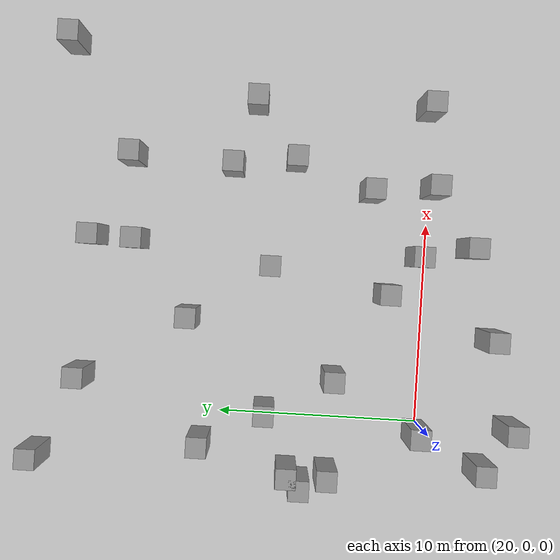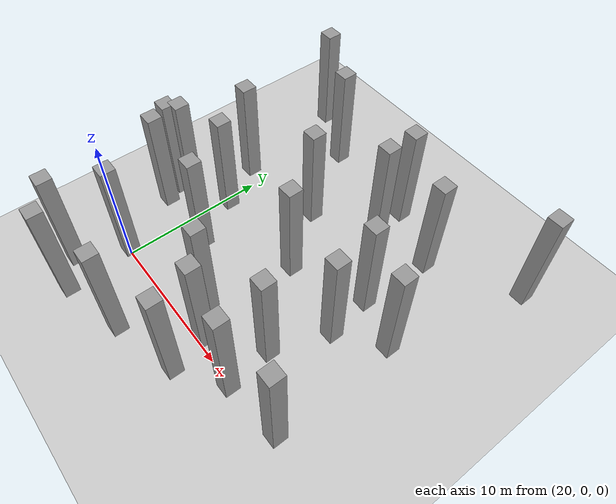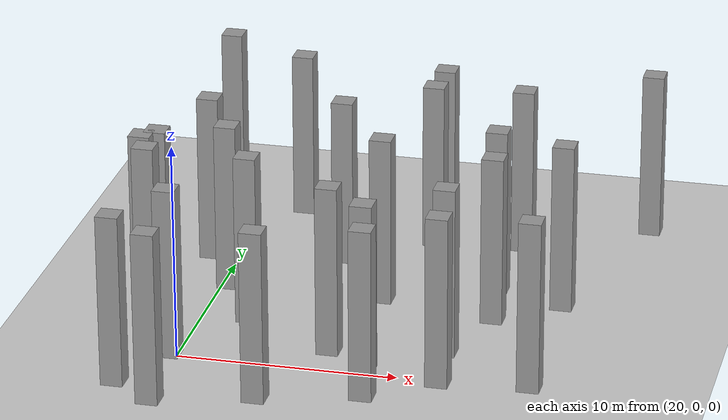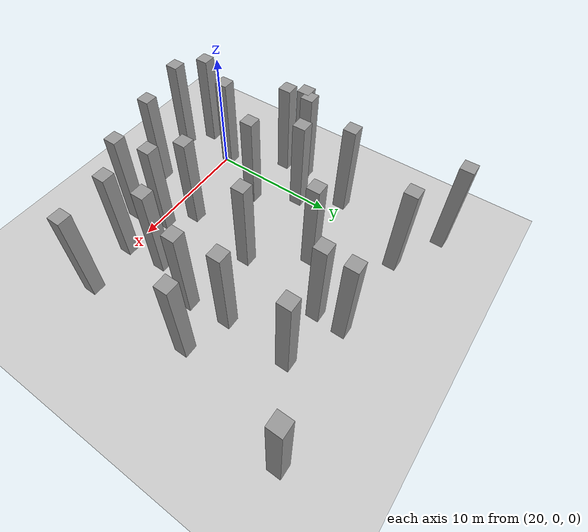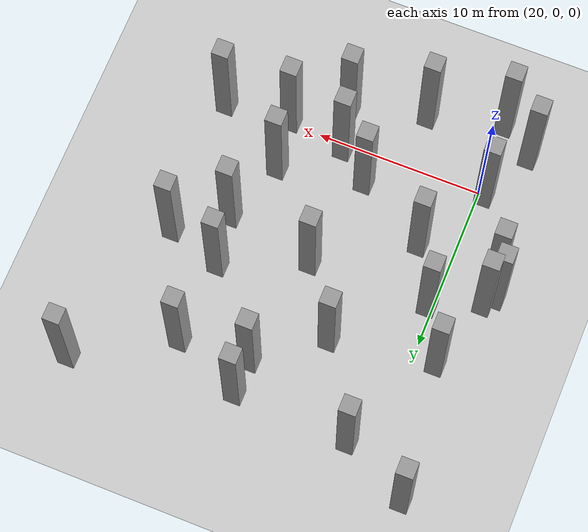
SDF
<sdf version="1.7">
 <world name="default">
  <model name="ground_plane">
   <static>1</static>
   <link name="link">
    <collision name="collision">
     <geometry><plane><normal>0 0 1</normal><size>100 100</size></plane></geometry>
     <surface>
      <contact><collide_bitmask>65535</collide_bitmask></contact>
      <friction><ode><mu>100</mu><mu2>50</mu2></ode></friction>
     </surface>
    </collision>
    <visual name="visual">
     <cast_shadows>0</cast_shadows>
     <geometry><plane><normal>0 0 1</normal><size>100 100</size></plane></geometry>
     <material>
      <script><uri>file://media/materials/scripts/gazebo.material</uri><name>Gazebo/Grey</name></script>
     </material>
    </visual>
   </link>
  </model>
  <model name="unit_box_static1">
   <link name="link">
    <inertial>
     <mass>1</mass>
     <inertia>
      <ixx>0.166667</ixx>
      <ixy>0</ixy>
      <ixz>0</ixz>
      <iyy>0.166667</iyy>
      <iyz>0</iyz>
      <izz>0.166667</izz>
     </inertia>
    </inertial>
    <visual name="visual">
     <geometry><box><size>1 1 8</size></box></geometry>
     <material>
      <script><name>Gazebo/Grey</name><uri>file://media/materials/scripts/gazebo.material</uri></script>
      <shader type="pixel"/>
     </material>
    </visual>
    <collision name="collision">
     <geometry><box><size>1 1 8</size></box></geometry>
     <surface>
      <friction>
       <ode><mu>1</mu><mu2>1</mu2><fdir1>0 0 0</fdir1><slip1>0</slip1><slip2>0</slip2></ode>
       <torsional>
        <coefficient>1</coefficient>
        <patch_radius>0</patch_radius>
        <surface_radius>0</surface_radius>
        <use_patch_radius>1</use_patch_radius>
        <ode><slip>0</slip></ode>
       </torsional>
      </friction>
      <bounce><restitution_coefficient>0</restitution_coefficient><threshold>1e+06</threshold></bounce>
      <contact>
       <collide_without_contact>0</collide_without_contact>
       <collide_without_contact_bitmask>1</collide_without_contact_bitmask>
       <collide_bitmask>1</collide_bitmask>
       <ode>
        <soft_cfm>0</soft_cfm>
        <soft_erp>0.2</soft_erp>
        <kp>1e+13</kp>
        <kd>1</kd>
        <max_vel>0.01</max_vel>
        <min_depth>0</min_depth>
       </ode>
       <bullet>
        <split_impulse>1</split_impulse>
        <split_impulse_penetration_threshold>-0.01</split_impulse_penetration_threshold>
        <soft_cfm>0</soft_cfm>
        <soft_erp>0.2</soft_erp>
        <kp>1e+13</kp>
        <kd>1</kd>
       </bullet>
      </contact>
     </surface>
    </collision>
   </link>
   <static>1</static>
   <pose>26.4613 1.99976 4 0 -0 0</pose>
  </model>
  <model name="unit_box_static5">
   <link name="link">
    <inertial>
     <mass>1</mass>
     <inertia>
      <ixx>0.166667</ixx>
      <ixy>0</ixy>
      <ixz>0</ixz>
      <iyy>0.166667</iyy>
      <iyz>0</iyz>
      <izz>0.166667</izz>
     </inertia>
    </inertial>
    <visual name="visual">
     <geometry><box><size>1 1 8</size></box></geometry>
     <material>
      <script><name>Gazebo/Grey</name><uri>file://media/materials/scripts/gazebo.material</uri></script>
      <shader type="pixel"/>
     </material>
    </visual>
    <collision name="collision">
     <geometry><box><size>1 1 8</size></box></geometry>
     <surface>
      <friction>
       <ode><mu>1</mu><mu2>1</mu2><fdir1>0 0 0</fdir1><slip1>0</slip1><slip2>0</slip2></ode>
       <torsional>
        <coefficient>1</coefficient>
        <patch_radius>0</patch_radius>
        <surface_radius>0</surface_radius>
        <use_patch_radius>1</use_patch_radius>
        <ode><slip>0</slip></ode>
       </torsional>
      </friction>
      <bounce><restitution_coefficient>0</restitution_coefficient><threshold>1e+06</threshold></bounce>
      <contact>
       <collide_without_contact>0</collide_without_contact>
       <collide_without_contact_bitmask>1</collide_without_contact_bitmask>
       <collide_bitmask>1</collide_bitmask>
       <ode>
        <soft_cfm>0</soft_cfm>
        <soft_erp>0.2</soft_erp>
        <kp>1e+13</kp>
        <kd>1</kd>
        <max_vel>0.01</max_vel>
        <min_depth>0</min_depth>
       </ode>
       <bullet>
        <split_impulse>1</split_impulse>
        <split_impulse_penetration_threshold>-0.01</split_impulse_penetration_threshold>
        <soft_cfm>0</soft_cfm>
        <soft_erp>0.2</soft_erp>
        <kp>1e+13</kp>
        <kd>1</kd>
       </bullet>
      </contact>
     </surface>
    </collision>
   </link>
   <static>1</static>
   <pose>35.6939 8.8659 4 0 -0 0</pose>
  </model>
  <model name="unit_box_static16">
   <link name="link">
    <inertial>
     <mass>1</mass>
     <inertia>
      <ixx>0.166667</ixx>
      <ixy>0</ixy>
      <ixz>0</ixz>
      <iyy>0.166667</iyy>
      <iyz>0</iyz>
      <izz>0.166667</izz>
     </inertia>
    </inertial>
    <visual name="visual">
     <geometry><box><size>1 1 8</size></box></geometry>
     <material>
      <script><name>Gazebo/Grey</name><uri>file://media/materials/scripts/gazebo.material</uri></script>
      <shader type="pixel"/>
     </material>
    </visual>
    <collision name="collision">
     <geometry><box><size>1 1 8</size></box></geometry>
     <surface>
      <friction>
       <ode><mu>1</mu><mu2>1</mu2><fdir1>0 0 0</fdir1><slip1>0</slip1><slip2>0</slip2></ode>
       <torsional>
        <coefficient>1</coefficient>
        <patch_radius>0</patch_radius>
        <surface_radius>0</surface_radius>
        <use_patch_radius>1</use_patch_radius>
        <ode><slip>0</slip></ode>
       </torsional>
      </friction>
      <bounce><restitution_coefficient>0</restitution_coefficient><threshold>1e+06</threshold></bounce>
      <contact>
       <collide_without_contact>0</collide_without_contact>
       <collide_without_contact_bitmask>1</collide_without_contact_bitmask>
       <collide_bitmask>1</collide_bitmask>
       <ode>
        <soft_cfm>0</soft_cfm>
        <soft_erp>0.2</soft_erp>
        <kp>1e+13</kp>
        <kd>1</kd>
        <max_vel>0.01</max_vel>
        <min_depth>0</min_depth>
       </ode>
       <bullet>
        <split_impulse>1</split_impulse>
        <split_impulse_penetration_threshold>-0.01</split_impulse_penetration_threshold>
        <soft_cfm>0</soft_cfm>
        <soft_erp>0.2</soft_erp>
        <kp>1e+13</kp>
        <kd>1</kd>
       </bullet>
      </contact>
     </surface>
    </collision>
   </link>
   <static>1</static>
   <pose>28.5174 14.5756 4 0 -0 0</pose>
  </model>
  <model name="unit_box_static18">
   <link name="link">
    <inertial>
     <mass>1</mass>
     <inertia>
      <ixx>0.166667</ixx>
      <ixy>0</ixy>
      <ixz>0</ixz>
      <iyy>0.166667</iyy>
      <iyz>0</iyz>
      <izz>0.166667</izz>
     </inertia>
    </inertial>
    <visual name="visual">
     <geometry><box><size>1 1 8</size></box></geometry>
     <material>
      <script><name>Gazebo/Grey</name><uri>file://media/materials/scripts/gazebo.material</uri></script>
      <shader type="pixel"/>
     </material>
    </visual>
    <collision name="collision">
     <geometry><box><size>1 1 8</size></box></geometry>
     <surface>
      <friction>
       <ode><mu>1</mu><mu2>1</mu2><fdir1>0 0 0</fdir1><slip1>0</slip1><slip2>0</slip2></ode>
       <torsional>
        <coefficient>1</coefficient>
        <patch_radius>0</patch_radius>
        <surface_radius>0</surface_radius>
        <use_patch_radius>1</use_patch_radius>
        <ode><slip>0</slip></ode>
       </torsional>
      </friction>
      <bounce><restitution_coefficient>0</restitution_coefficient><threshold>1e+06</threshold></bounce>
      <contact>
       <collide_without_contact>0</collide_without_contact>
       <collide_without_contact_bitmask>1</collide_without_contact_bitmask>
       <collide_bitmask>1</collide_bitmask>
       <ode>
        <soft_cfm>0</soft_cfm>
        <soft_erp>0.2</soft_erp>
        <kp>1e+13</kp>
        <kd>1</kd>
        <max_vel>0.01</max_vel>
        <min_depth>0</min_depth>
       </ode>
       <bullet>
        <split_impulse>1</split_impulse>
        <split_impulse_penetration_threshold>-0.01</split_impulse_penetration_threshold>
        <soft_cfm>0</soft_cfm>
        <soft_erp>0.2</soft_erp>
        <kp>1e+13</kp>
        <kd>1</kd>
       </bullet>
      </contact>
     </surface>
    </collision>
   </link>
   <static>1</static>
   <pose>17.3853 6.51592 4 0 -0 0</pose>
  </model>
  <model name="unit_box_static22">
   <link name="link">
    <inertial>
     <mass>1</mass>
     <inertia>
      <ixx>0.166667</ixx>
      <ixy>0</ixy>
      <ixz>0</ixz>
      <iyy>0.166667</iyy>
      <iyz>0</iyz>
      <izz>0.166667</izz>
     </inertia>
    </inertial>
    <visual name="visual">
     <geometry><box><size>1 1 8</size></box></geometry>
     <material>
      <script><name>Gazebo/Grey</name><uri>file://media/materials/scripts/gazebo.material</uri></script>
      <shader type="pixel"/>
     </material>
    </visual>
    <collision name="collision">
     <geometry><box><size>1 1 8</size></box></geometry>
     <surface>
      <friction>
       <ode><mu>1</mu><mu2>1</mu2><fdir1>0 0 0</fdir1><slip1>0</slip1><slip2>0</slip2></ode>
       <torsional>
        <coefficient>1</coefficient>
        <patch_radius>0</patch_radius>
        <surface_radius>0</surface_radius>
        <use_patch_radius>1</use_patch_radius>
        <ode><slip>0</slip></ode>
       </torsional>
      </friction>
      <bounce><restitution_coefficient>0</restitution_coefficient><threshold>1e+06</threshold></bounce>
      <contact>
       <collide_without_contact>0</collide_without_contact>
       <collide_without_contact_bitmask>1</collide_without_contact_bitmask>
       <collide_bitmask>1</collide_bitmask>
       <ode>
        <soft_cfm>0</soft_cfm>
        <soft_erp>0.2</soft_erp>
        <kp>1e+13</kp>
        <kd>1</kd>
        <max_vel>0.01</max_vel>
        <min_depth>0</min_depth>
       </ode>
       <bullet>
        <split_impulse>1</split_impulse>
        <split_impulse_penetration_threshold>-0.01</split_impulse_penetration_threshold>
        <soft_cfm>0</soft_cfm>
        <soft_erp>0.2</soft_erp>
        <kp>1e+13</kp>
        <kd>1</kd>
       </bullet>
      </contact>
     </surface>
    </collision>
   </link>
   <static>1</static>
   <pose>17.6137 19.0399 4 0 -0 0</pose>
  </model>
  <model name="unit_box_static30">
   <link name="link">
    <inertial>
     <mass>1</mass>
     <inertia>
      <ixx>0.166667</ixx>
      <ixy>0</ixy>
      <ixz>0</ixz>
      <iyy>0.166667</iyy>
      <iyz>0</iyz>
      <izz>0.166667</izz>
     </inertia>
    </inertial>
    <visual name="visual">
     <geometry><box><size>1 1 8</size></box></geometry>
     <material>
      <script><name>Gazebo/Grey</name><uri>file://media/materials/scripts/gazebo.material</uri></script>
      <shader type="pixel"/>
     </material>
    </visual>
    <collision name="collision">
     <geometry><box><size>1 1 8</size></box></geometry>
     <surface>
      <friction>
       <ode><mu>1</mu><mu2>1</mu2><fdir1>0 0 0</fdir1><slip1>0</slip1><slip2>0</slip2></ode>
       <torsional>
        <coefficient>1</coefficient>
        <patch_radius>0</patch_radius>
        <surface_radius>0</surface_radius>
        <use_patch_radius>1</use_patch_radius>
        <ode><slip>0</slip></ode>
       </torsional>
      </friction>
      <bounce><restitution_coefficient>0</restitution_coefficient><threshold>1e+06</threshold></bounce>
      <contact>
       <collide_without_contact>0</collide_without_contact>
       <collide_without_contact_bitmask>1</collide_without_contact_bitmask>
       <collide_bitmask>1</collide_bitmask>
       <ode>
        <soft_cfm>0</soft_cfm>
        <soft_erp>0.2</soft_erp>
        <kp>1e+13</kp>
        <kd>1</kd>
        <max_vel>0.01</max_vel>
        <min_depth>0</min_depth>
       </ode>
       <bullet>
        <split_impulse>1</split_impulse>
        <split_impulse_penetration_threshold>-0.01</split_impulse_penetration_threshold>
        <soft_cfm>0</soft_cfm>
        <soft_erp>0.2</soft_erp>
        <kp>1e+13</kp>
        <kd>1</kd>
       </bullet>
      </contact>
     </surface>
    </collision>
   </link>
   <static>1</static>
   <pose>18.6423 10.8891 4 0 -0 0</pose>
  </model>
  <model name="unit_box_static31">
   <link name="link">
    <inertial>
     <mass>1</mass>
     <inertia>
      <ixx>0.166667</ixx>
      <ixy>0</ixy>
      <ixz>0</ixz>
      <iyy>0.166667</iyy>
      <iyz>0</iyz>
      <izz>0.166667</izz>
     </inertia>
    </inertial>
    <visual name="visual">
     <geometry><box><size>1 1 8</size></box></geometry>
     <material>
      <script><name>Gazebo/Grey</name><uri>file://media/materials/scripts/gazebo.material</uri></script>
      <shader type="pixel"/>
     </material>
    </visual>
    <collision name="collision">
     <geometry><box><size>1 1 8</size></box></geometry>
     <surface>
      <friction>
       <ode><mu>1</mu><mu2>1</mu2><fdir1>0 0 0</fdir1><slip1>0</slip1><slip2>0</slip2></ode>
       <torsional>
        <coefficient>1</coefficient>
        <patch_radius>0</patch_radius>
        <surface_radius>0</surface_radius>
        <use_patch_radius>1</use_patch_radius>
        <ode><slip>0</slip></ode>
       </torsional>
      </friction>
      <bounce><restitution_coefficient>0</restitution_coefficient><threshold>1e+06</threshold></bounce>
      <contact>
       <collide_without_contact>0</collide_without_contact>
       <collide_without_contact_bitmask>1</collide_without_contact_bitmask>
       <collide_bitmask>1</collide_bitmask>
       <ode>
        <soft_cfm>0</soft_cfm>
        <soft_erp>0.2</soft_erp>
        <kp>1e+13</kp>
        <kd>1</kd>
        <max_vel>0.01</max_vel>
        <min_depth>0</min_depth>
       </ode>
       <bullet>
        <split_impulse>1</split_impulse>
        <split_impulse_penetration_threshold>-0.01</split_impulse_penetration_threshold>
        <soft_cfm>0</soft_cfm>
        <soft_erp>0.2</soft_erp>
        <kp>1e+13</kp>
        <kd>1</kd>
       </bullet>
      </contact>
     </surface>
    </collision>
   </link>
   <static>1</static>
   <pose>28.379 0.483916 4 0 -0 0</pose>
  </model>
  <model name="unit_box_static32">
   <link name="link">
    <inertial>
     <mass>1</mass>
     <inertia>
      <ixx>0.166667</ixx>
      <ixy>0</ixy>
      <ixz>0</ixz>
      <iyy>0.166667</iyy>
      <iyz>0</iyz>
      <izz>0.166667</izz>
     </inertia>
    </inertial>
    <visual name="visual">
     <geometry><box><size>1 1 8</size></box></geometry>
     <material>
      <script><name>Gazebo/Grey</name><uri>file://media/materials/scripts/gazebo.material</uri></script>
      <shader type="pixel"/>
     </material>
    </visual>
    <collision name="collision">
     <geometry><box><size>1 1 8</size></box></geometry>
     <surface>
      <friction>
       <ode><mu>1</mu><mu2>1</mu2><fdir1>0 0 0</fdir1><slip1>0</slip1><slip2>0</slip2></ode>
       <torsional>
        <coefficient>1</coefficient>
        <patch_radius>0</patch_radius>
        <surface_radius>0</surface_radius>
        <use_patch_radius>1</use_patch_radius>
        <ode><slip>0</slip></ode>
       </torsional>
      </friction>
      <bounce><restitution_coefficient>0</restitution_coefficient><threshold>1e+06</threshold></bounce>
      <contact>
       <collide_without_contact>0</collide_without_contact>
       <collide_without_contact_bitmask>1</collide_without_contact_bitmask>
       <collide_bitmask>1</collide_bitmask>
       <ode>
        <soft_cfm>0</soft_cfm>
        <soft_erp>0.2</soft_erp>
        <kp>1e+13</kp>
        <kd>1</kd>
        <max_vel>0.01</max_vel>
        <min_depth>0</min_depth>
       </ode>
       <bullet>
        <split_impulse>1</split_impulse>
        <split_impulse_penetration_threshold>-0.01</split_impulse_penetration_threshold>
        <soft_cfm>0</soft_cfm>
        <soft_erp>0.2</soft_erp>
        <kp>1e+13</kp>
        <kd>1</kd>
       </bullet>
      </contact>
     </surface>
    </collision>
   </link>
   <static>1</static>
   <pose>32.6948 14.9108 4 0 -0 0</pose>
  </model>
  <model name="unit_box_static45">
   <link name="link">
    <inertial>
     <mass>1</mass>
     <inertia>
      <ixx>0.166667</ixx>
      <ixy>0</ixy>
      <ixz>0</ixz>
      <iyy>0.166667</iyy>
      <iyz>0</iyz>
      <izz>0.166667</izz>
     </inertia>
    </inertial>
    <visual name="visual">
     <geometry><box><size>1 1 8</size></box></geometry>
     <material>
      <script><name>Gazebo/Grey</name><uri>file://media/materials/scripts/gazebo.material</uri></script>
      <shader type="pixel"/>
     </material>
    </visual>
    <collision name="collision">
     <geometry><box><size>1 1 8</size></box></geometry>
     <surface>
      <friction>
       <ode><mu>1</mu><mu2>1</mu2><fdir1>0 0 0</fdir1><slip1>0</slip1><slip2>0</slip2></ode>
       <torsional>
        <coefficient>1</coefficient>
        <patch_radius>0</patch_radius>
        <surface_radius>0</surface_radius>
        <use_patch_radius>1</use_patch_radius>
        <ode><slip>0</slip></ode>
       </torsional>
      </friction>
      <bounce><restitution_coefficient>0</restitution_coefficient><threshold>1e+06</threshold></bounce>
      <contact>
       <collide_without_contact>0</collide_without_contact>
       <collide_without_contact_bitmask>1</collide_without_contact_bitmask>
       <collide_bitmask>1</collide_bitmask>
       <ode>
        <soft_cfm>0</soft_cfm>
        <soft_erp>0.2</soft_erp>
        <kp>1e+13</kp>
        <kd>1</kd>
        <max_vel>0.01</max_vel>
        <min_depth>0</min_depth>
       </ode>
       <bullet>
        <split_impulse>1</split_impulse>
        <split_impulse_penetration_threshold>-0.01</split_impulse_penetration_threshold>
        <soft_cfm>0</soft_cfm>
        <soft_erp>0.2</soft_erp>
        <kp>1e+13</kp>
        <kd>1</kd>
       </bullet>
      </contact>
     </surface>
    </collision>
   </link>
   <static>1</static>
   <pose>20.0485 -4.47265 4 0 -0 0</pose>
  </model>
  <model name="unit_box_static46">
   <link name="link">
    <inertial>
     <mass>1</mass>
     <inertia>
      <ixx>0.166667</ixx>
      <ixy>0</ixy>
      <ixz>0</ixz>
      <iyy>0.166667</iyy>
      <iyz>0</iyz>
      <izz>0.166667</izz>
     </inertia>
    </inertial>
    <visual name="visual">
     <geometry><box><size>1 1 8</size></box></geometry>
     <material>
      <script><name>Gazebo/Grey</name><uri>file://media/materials/scripts/gazebo.material</uri></script>
      <shader type="pixel"/>
     </material>
    </visual>
    <collision name="collision">
     <geometry><box><size>1 1 8</size></box></geometry>
     <surface>
      <friction>
       <ode><mu>1</mu><mu2>1</mu2><fdir1>0 0 0</fdir1><slip1>0</slip1><slip2>0</slip2></ode>
       <torsional>
        <coefficient>1</coefficient>
        <patch_radius>0</patch_radius>
        <surface_radius>0</surface_radius>
        <use_patch_radius>1</use_patch_radius>
        <ode><slip>0</slip></ode>
       </torsional>
      </friction>
      <bounce><restitution_coefficient>0</restitution_coefficient><threshold>1e+06</threshold></bounce>
      <contact>
       <collide_without_contact>0</collide_without_contact>
       <collide_without_contact_bitmask>1</collide_without_contact_bitmask>
       <collide_bitmask>1</collide_bitmask>
       <ode>
        <soft_cfm>0</soft_cfm>
        <soft_erp>0.2</soft_erp>
        <kp>1e+13</kp>
        <kd>1</kd>
        <max_vel>0.01</max_vel>
        <min_depth>0</min_depth>
       </ode>
       <bullet>
        <split_impulse>1</split_impulse>
        <split_impulse_penetration_threshold>-0.01</split_impulse_penetration_threshold>
        <soft_cfm>0</soft_cfm>
        <soft_erp>0.2</soft_erp>
        <kp>1e+13</kp>
        <kd>1</kd>
       </bullet>
      </contact>
     </surface>
    </collision>
   </link>
   <static>1</static>
   <pose>32.4495 9.89256 4 0 -0 0</pose>
  </model>
  <model name="unit_box_static52">
   <link name="link">
    <inertial>
     <mass>1</mass>
     <inertia>
      <ixx>0.166667</ixx>
      <ixy>0</ixy>
      <ixz>0</ixz>
      <iyy>0.166667</iyy>
      <iyz>0</iyz>
      <izz>0.166667</izz>
     </inertia>
    </inertial>
    <visual name="visual">
     <geometry><box><size>1 1 8</size></box></geometry>
     <material>
      <script><name>Gazebo/Grey</name><uri>file://media/materials/scripts/gazebo.material</uri></script>
      <shader type="pixel"/>
     </material>
    </visual>
    <collision name="collision">
     <geometry><box><size>1 1 8</size></box></geometry>
     <surface>
      <friction>
       <ode><mu>1</mu><mu2>1</mu2><fdir1>0 0 0</fdir1><slip1>0</slip1><slip2>0</slip2></ode>
       <torsional>
        <coefficient>1</coefficient>
        <patch_radius>0</patch_radius>
        <surface_radius>0</surface_radius>
        <use_patch_radius>1</use_patch_radius>
        <ode><slip>0</slip></ode>
       </torsional>
      </friction>
      <bounce><restitution_coefficient>0</restitution_coefficient><threshold>1e+06</threshold></bounce>
      <contact>
       <collide_without_contact>0</collide_without_contact>
       <collide_without_contact_bitmask>1</collide_without_contact_bitmask>
       <collide_bitmask>1</collide_bitmask>
       <ode>
        <soft_cfm>0</soft_cfm>
        <soft_erp>0.2</soft_erp>
        <kp>1e+13</kp>
        <kd>1</kd>
        <max_vel>0.01</max_vel>
        <min_depth>0</min_depth>
       </ode>
       <bullet>
        <split_impulse>1</split_impulse>
        <split_impulse_penetration_threshold>-0.01</split_impulse_penetration_threshold>
        <soft_cfm>0</soft_cfm>
        <soft_erp>0.2</soft_erp>
        <kp>1e+13</kp>
        <kd>1</kd>
       </bullet>
      </contact>
     </surface>
    </collision>
   </link>
   <static>1</static>
   <pose>19.6242 0.16304 4 0 -0 0</pose>
  </model>
  <model name="unit_box_static61">
   <link name="link">
    <inertial>
     <mass>1</mass>
     <inertia>
      <ixx>0.166667</ixx>
      <ixy>0</ixy>
      <ixz>0</ixz>
      <iyy>0.166667</iyy>
      <iyz>0</iyz>
      <izz>0.166667</izz>
     </inertia>
    </inertial>
    <visual name="visual">
     <geometry><box><size>1 1 8</size></box></geometry>
     <material>
      <script><name>Gazebo/Grey</name><uri>file://media/materials/scripts/gazebo.material</uri></script>
      <shader type="pixel"/>
     </material>
    </visual>
    <collision name="collision">
     <geometry><box><size>1 1 8</size></box></geometry>
     <surface>
      <friction>
       <ode><mu>1</mu><mu2>1</mu2><fdir1>0 0 0</fdir1><slip1>0</slip1><slip2>0</slip2></ode>
       <torsional>
        <coefficient>1</coefficient>
        <patch_radius>0</patch_radius>
        <surface_radius>0</surface_radius>
        <use_patch_radius>1</use_patch_radius>
        <ode><slip>0</slip></ode>
       </torsional>
      </friction>
      <bounce><restitution_coefficient>0</restitution_coefficient><threshold>1e+06</threshold></bounce>
      <contact>
       <collide_without_contact>0</collide_without_contact>
       <collide_without_contact_bitmask>1</collide_without_contact_bitmask>
       <collide_bitmask>1</collide_bitmask>
       <ode>
        <soft_cfm>0</soft_cfm>
        <soft_erp>0.2</soft_erp>
        <kp>1e+13</kp>
        <kd>1</kd>
        <max_vel>0.01</max_vel>
        <min_depth>0</min_depth>
       </ode>
       <bullet>
        <split_impulse>1</split_impulse>
        <split_impulse_penetration_threshold>-0.01</split_impulse_penetration_threshold>
        <soft_cfm>0</soft_cfm>
        <soft_erp>0.2</soft_erp>
        <kp>1e+13</kp>
        <kd>1</kd>
       </bullet>
      </contact>
     </surface>
    </collision>
   </link>
   <static>1</static>
   <pose>32.8914 6.80338 4 0 -0 0</pose>
  </model>
  <model name="unit_box_static64">
   <link name="link">
    <inertial>
     <mass>1</mass>
     <inertia>
      <ixx>0.166667</ixx>
      <ixy>0</ixy>
      <ixz>0</ixz>
      <iyy>0.166667</iyy>
      <iyz>0</iyz>
      <izz>0.166667</izz>
     </inertia>
    </inertial>
    <visual name="visual">
     <geometry><box><size>1 1 8</size></box></geometry>
     <material>
      <script><name>Gazebo/Grey</name><uri>file://media/materials/scripts/gazebo.material</uri></script>
      <shader type="pixel"/>
     </material>
    </visual>
    <collision name="collision">
     <geometry><box><size>1 1 8</size></box></geometry>
     <surface>
      <friction>
       <ode><mu>1</mu><mu2>1</mu2><fdir1>0 0 0</fdir1><slip1>0</slip1><slip2>0</slip2></ode>
       <torsional>
        <coefficient>1</coefficient>
        <patch_radius>0</patch_radius>
        <surface_radius>0</surface_radius>
        <use_patch_radius>1</use_patch_radius>
        <ode><slip>0</slip></ode>
       </torsional>
      </friction>
      <bounce><restitution_coefficient>0</restitution_coefficient><threshold>1e+06</threshold></bounce>
      <contact>
       <collide_without_contact>0</collide_without_contact>
       <collide_without_contact_bitmask>1</collide_without_contact_bitmask>
       <collide_bitmask>1</collide_bitmask>
       <ode>
        <soft_cfm>0</soft_cfm>
        <soft_erp>0.2</soft_erp>
        <kp>1e+13</kp>
        <kd>1</kd>
        <max_vel>0.01</max_vel>
        <min_depth>0</min_depth>
       </ode>
       <bullet>
        <split_impulse>1</split_impulse>
        <split_impulse_penetration_threshold>-0.01</split_impulse_penetration_threshold>
        <soft_cfm>0</soft_cfm>
        <soft_erp>0.2</soft_erp>
        <kp>1e+13</kp>
        <kd>1</kd>
       </bullet>
      </contact>
     </surface>
    </collision>
   </link>
   <static>1</static>
   <pose>24.4703 -3.32359 4 0 -0 0</pose>
  </model>
  <model name="unit_box_static79">
   <link name="link">
    <inertial>
     <mass>1</mass>
     <inertia>
      <ixx>0.166667</ixx>
      <ixy>0</ixy>
      <ixz>0</ixz>
      <iyy>0.166667</iyy>
      <iyz>0</iyz>
      <izz>0.166667</izz>
     </inertia>
    </inertial>
    <visual name="visual">
     <geometry><box><size>1 1 8</size></box></geometry>
     <material>
      <script><name>Gazebo/Grey</name><uri>file://media/materials/scripts/gazebo.material</uri></script>
      <shader type="pixel"/>
     </material>
    </visual>
    <collision name="collision">
     <geometry><box><size>1 1 8</size></box></geometry>
     <surface>
      <friction>
       <ode><mu>1</mu><mu2>1</mu2><fdir1>0 0 0</fdir1><slip1>0</slip1><slip2>0</slip2></ode>
       <torsional>
        <coefficient>1</coefficient>
        <patch_radius>0</patch_radius>
        <surface_radius>0</surface_radius>
        <use_patch_radius>1</use_patch_radius>
        <ode><slip>0</slip></ode>
       </torsional>
      </friction>
      <bounce><restitution_coefficient>0</restitution_coefficient><threshold>1e+06</threshold></bounce>
      <contact>
       <collide_without_contact>0</collide_without_contact>
       <collide_without_contact_bitmask>1</collide_without_contact_bitmask>
       <collide_bitmask>1</collide_bitmask>
       <ode>
        <soft_cfm>0</soft_cfm>
        <soft_erp>0.2</soft_erp>
        <kp>1e+13</kp>
        <kd>1</kd>
        <max_vel>0.01</max_vel>
        <min_depth>0</min_depth>
       </ode>
       <bullet>
        <split_impulse>1</split_impulse>
        <split_impulse_penetration_threshold>-0.01</split_impulse_penetration_threshold>
        <soft_cfm>0</soft_cfm>
        <soft_erp>0.2</soft_erp>
        <kp>1e+13</kp>
        <kd>1</kd>
       </bullet>
      </contact>
     </surface>
    </collision>
   </link>
   <static>1</static>
   <pose>38.2334 18.1428 4 0 -0 0</pose>
  </model>
  <model name="unit_box_static94">
   <link name="link">
    <inertial>
     <mass>1</mass>
     <inertia>
      <ixx>0.166667</ixx>
      <ixy>0</ixy>
      <ixz>0</ixz>
      <iyy>0.166667</iyy>
      <iyz>0</iyz>
      <izz>0.166667</izz>
     </inertia>
    </inertial>
    <visual name="visual">
     <geometry><box><size>1 1 8</size></box></geometry>
     <material>
      <script><name>Gazebo/Grey</name><uri>file://media/materials/scripts/gazebo.material</uri></script>
      <shader type="pixel"/>
     </material>
    </visual>
    <collision name="collision">
     <geometry><box><size>1 1 8</size></box></geometry>
     <surface>
      <friction>
       <ode><mu>1</mu><mu2>1</mu2><fdir1>0 0 0</fdir1><slip1>0</slip1><slip2>0</slip2></ode>
       <torsional>
        <coefficient>1</coefficient>
        <patch_radius>0</patch_radius>
        <surface_radius>0</surface_radius>
        <use_patch_radius>1</use_patch_radius>
        <ode><slip>0</slip></ode>
       </torsional>
      </friction>
      <bounce><restitution_coefficient>0</restitution_coefficient><threshold>1e+06</threshold></bounce>
      <contact>
       <collide_without_contact>0</collide_without_contact>
       <collide_without_contact_bitmask>1</collide_without_contact_bitmask>
       <collide_bitmask>1</collide_bitmask>
       <ode>
        <soft_cfm>0</soft_cfm>
        <soft_erp>0.2</soft_erp>
        <kp>1e+13</kp>
        <kd>1</kd>
        <max_vel>0.01</max_vel>
        <min_depth>0</min_depth>
       </ode>
       <bullet>
        <split_impulse>1</split_impulse>
        <split_impulse_penetration_threshold>-0.01</split_impulse_penetration_threshold>
        <soft_cfm>0</soft_cfm>
        <soft_erp>0.2</soft_erp>
        <kp>1e+13</kp>
        <kd>1</kd>
       </bullet>
      </contact>
     </surface>
    </collision>
   </link>
   <static>1</static>
   <pose>27.5313 7.8301 4 0 -0 0</pose>
  </model>
  <model name="unit_box_static102">
   <link name="link">
    <inertial>
     <mass>1</mass>
     <inertia>
      <ixx>0.166667</ixx>
      <ixy>0</ixy>
      <ixz>0</ixz>
      <iyy>0.166667</iyy>
      <iyz>0</iyz>
      <izz>0.166667</izz>
     </inertia>
    </inertial>
    <visual name="visual">
     <geometry><box><size>1 1 8</size></box></geometry>
     <material>
      <script><name>Gazebo/Grey</name><uri>file://media/materials/scripts/gazebo.material</uri></script>
      <shader type="pixel"/>
     </material>
    </visual>
    <collision name="collision">
     <geometry><box><size>1 1 8</size></box></geometry>
     <surface>
      <friction>
       <ode><mu>1</mu><mu2>1</mu2><fdir1>0 0 0</fdir1><slip1>0</slip1><slip2>0</slip2></ode>
       <torsional>
        <coefficient>1</coefficient>
        <patch_radius>0</patch_radius>
        <surface_radius>0</surface_radius>
        <use_patch_radius>1</use_patch_radius>
        <ode><slip>0</slip></ode>
       </torsional>
      </friction>
      <bounce><restitution_coefficient>0</restitution_coefficient><threshold>1e+06</threshold></bounce>
      <contact>
       <collide_without_contact>0</collide_without_contact>
       <collide_without_contact_bitmask>1</collide_without_contact_bitmask>
       <collide_bitmask>1</collide_bitmask>
       <ode>
        <soft_cfm>0</soft_cfm>
        <soft_erp>0.2</soft_erp>
        <kp>1e+13</kp>
        <kd>1</kd>
        <max_vel>0.01</max_vel>
        <min_depth>0</min_depth>
       </ode>
       <bullet>
        <split_impulse>1</split_impulse>
        <split_impulse_penetration_threshold>-0.01</split_impulse_penetration_threshold>
        <soft_cfm>0</soft_cfm>
        <soft_erp>0.2</soft_erp>
        <kp>1e+13</kp>
        <kd>1</kd>
       </bullet>
      </contact>
     </surface>
    </collision>
   </link>
   <static>1</static>
   <pose>22.1272 4.4509 4 0 -0 0</pose>
  </model>
  <model name="unit_box_static103">
   <link name="link">
    <inertial>
     <mass>1</mass>
     <inertia>
      <ixx>0.166667</ixx>
      <ixy>0</ixy>
      <ixz>0</ixz>
      <iyy>0.166667</iyy>
      <iyz>0</iyz>
      <izz>0.166667</izz>
     </inertia>
    </inertial>
    <visual name="visual">
     <geometry><box><size>1 1 8</size></box></geometry>
     <material>
      <script><name>Gazebo/Grey</name><uri>file://media/materials/scripts/gazebo.material</uri></script>
      <shader type="pixel"/>
     </material>
    </visual>
    <collision name="collision">
     <geometry><box><size>1 1 8</size></box></geometry>
     <surface>
      <friction>
       <ode><mu>1</mu><mu2>1</mu2><fdir1>0 0 0</fdir1><slip1>0</slip1><slip2>0</slip2></ode>
       <torsional>
        <coefficient>1</coefficient>
        <patch_radius>0</patch_radius>
        <surface_radius>0</surface_radius>
        <use_patch_radius>1</use_patch_radius>
        <ode><slip>0</slip></ode>
       </torsional>
      </friction>
      <bounce><restitution_coefficient>0</restitution_coefficient><threshold>1e+06</threshold></bounce>
      <contact>
       <collide_without_contact>0</collide_without_contact>
       <collide_without_contact_bitmask>1</collide_without_contact_bitmask>
       <collide_bitmask>1</collide_bitmask>
       <ode>
        <soft_cfm>0</soft_cfm>
        <soft_erp>0.2</soft_erp>
        <kp>1e+13</kp>
        <kd>1</kd>
        <max_vel>0.01</max_vel>
        <min_depth>0</min_depth>
       </ode>
       <bullet>
        <split_impulse>1</split_impulse>
        <split_impulse_penetration_threshold>-0.01</split_impulse_penetration_threshold>
        <soft_cfm>0</soft_cfm>
        <soft_erp>0.2</soft_erp>
        <kp>1e+13</kp>
        <kd>1</kd>
       </bullet>
      </contact>
     </surface>
    </collision>
   </link>
   <static>1</static>
   <pose>18.0528 -3.05502 4 0 -0 0</pose>
  </model>
  <model name="unit_box_static106">
   <link name="link">
    <inertial>
     <mass>1</mass>
     <inertia>
      <ixx>0.166667</ixx>
      <ixy>0</ixy>
      <ixz>0</ixz>
      <iyy>0.166667</iyy>
      <iyz>0</iyz>
      <izz>0.166667</izz>
     </inertia>
    </inertial>
    <visual name="visual">
     <geometry><box><size>1 1 8</size></box></geometry>
     <material>
      <script><name>Gazebo/Grey</name><uri>file://media/materials/scripts/gazebo.material</uri></script>
      <shader type="pixel"/>
     </material>
    </visual>
    <collision name="collision">
     <geometry><box><size>1 1 8</size></box></geometry>
     <surface>
      <friction>
       <ode><mu>1</mu><mu2>1</mu2><fdir1>0 0 0</fdir1><slip1>0</slip1><slip2>0</slip2></ode>
       <torsional>
        <coefficient>1</coefficient>
        <patch_radius>0</patch_radius>
        <surface_radius>0</surface_radius>
        <use_patch_radius>1</use_patch_radius>
        <ode><slip>0</slip></ode>
       </torsional>
      </friction>
      <bounce><restitution_coefficient>0</restitution_coefficient><threshold>1e+06</threshold></bounce>
      <contact>
       <collide_without_contact>0</collide_without_contact>
       <collide_without_contact_bitmask>1</collide_without_contact_bitmask>
       <collide_bitmask>1</collide_bitmask>
       <ode>
        <soft_cfm>0</soft_cfm>
        <soft_erp>0.2</soft_erp>
        <kp>1e+13</kp>
        <kd>1</kd>
        <max_vel>0.01</max_vel>
        <min_depth>0</min_depth>
       </ode>
       <bullet>
        <split_impulse>1</split_impulse>
        <split_impulse_penetration_threshold>-0.01</split_impulse_penetration_threshold>
        <soft_cfm>0</soft_cfm>
        <soft_erp>0.2</soft_erp>
        <kp>1e+13</kp>
        <kd>1</kd>
       </bullet>
      </contact>
     </surface>
    </collision>
   </link>
   <static>1</static>
   <pose>21.6354 16.9899 4 0 -0 0</pose>
  </model>
  <model name="unit_box_static113">
   <link name="link">
    <inertial>
     <mass>1</mass>
     <inertia>
      <ixx>0.166667</ixx>
      <ixy>0</ixy>
      <ixz>0</ixz>
      <iyy>0.166667</iyy>
      <iyz>0</iyz>
      <izz>0.166667</izz>
     </inertia>
    </inertial>
    <visual name="visual">
     <geometry><box><size>1 1 8</size></box></geometry>
     <material>
      <script><name>Gazebo/Grey</name><uri>file://media/materials/scripts/gazebo.material</uri></script>
      <shader type="pixel"/>
     </material>
    </visual>
    <collision name="collision">
     <geometry><box><size>1 1 8</size></box></geometry>
     <surface>
      <friction>
       <ode><mu>1</mu><mu2>1</mu2><fdir1>0 0 0</fdir1><slip1>0</slip1><slip2>0</slip2></ode>
       <torsional>
        <coefficient>1</coefficient>
        <patch_radius>0</patch_radius>
        <surface_radius>0</surface_radius>
        <use_patch_radius>1</use_patch_radius>
        <ode><slip>0</slip></ode>
       </torsional>
      </friction>
      <bounce><restitution_coefficient>0</restitution_coefficient><threshold>1e+06</threshold></bounce>
      <contact>
       <collide_without_contact>0</collide_without_contact>
       <collide_without_contact_bitmask>1</collide_without_contact_bitmask>
       <collide_bitmask>1</collide_bitmask>
       <ode>
        <soft_cfm>0</soft_cfm>
        <soft_erp>0.2</soft_erp>
        <kp>1e+13</kp>
        <kd>1</kd>
        <max_vel>0.01</max_vel>
        <min_depth>0</min_depth>
       </ode>
       <bullet>
        <split_impulse>1</split_impulse>
        <split_impulse_penetration_threshold>-0.01</split_impulse_penetration_threshold>
        <soft_cfm>0</soft_cfm>
        <soft_erp>0.2</soft_erp>
        <kp>1e+13</kp>
        <kd>1</kd>
       </bullet>
      </contact>
     </surface>
    </collision>
   </link>
   <static>1</static>
   <pose>17.3891 4.55016 4 0 -0 0</pose>
  </model>
  <model name="unit_box_static123">
   <link name="link">
    <inertial>
     <mass>1</mass>
     <inertia>
      <ixx>0.166667</ixx>
      <ixy>0</ixy>
      <ixz>0</ixz>
      <iyy>0.166667</iyy>
      <iyz>0</iyz>
      <izz>0.166667</izz>
     </inertia>
    </inertial>
    <visual name="visual">
     <geometry><box><size>1 1 8</size></box></geometry>
     <material>
      <script><name>Gazebo/Grey</name><uri>file://media/materials/scripts/gazebo.material</uri></script>
      <shader type="pixel"/>
     </material>
    </visual>
    <collision name="collision">
     <geometry><box><size>1 1 8</size></box></geometry>
     <surface>
      <friction>
       <ode><mu>1</mu><mu2>1</mu2><fdir1>0 0 0</fdir1><slip1>0</slip1><slip2>0</slip2></ode>
       <torsional>
        <coefficient>1</coefficient>
        <patch_radius>0</patch_radius>
        <surface_radius>0</surface_radius>
        <use_patch_radius>1</use_patch_radius>
        <ode><slip>0</slip></ode>
       </torsional>
      </friction>
      <bounce><restitution_coefficient>0</restitution_coefficient><threshold>1e+06</threshold></bounce>
      <contact>
       <collide_without_contact>0</collide_without_contact>
       <collide_without_contact_bitmask>1</collide_without_contact_bitmask>
       <collide_bitmask>1</collide_bitmask>
       <ode>
        <soft_cfm>0</soft_cfm>
        <soft_erp>0.2</soft_erp>
        <kp>1e+13</kp>
        <kd>1</kd>
        <max_vel>0.01</max_vel>
        <min_depth>0</min_depth>
       </ode>
       <bullet>
        <split_impulse>1</split_impulse>
        <split_impulse_penetration_threshold>-0.01</split_impulse_penetration_threshold>
        <soft_cfm>0</soft_cfm>
        <soft_erp>0.2</soft_erp>
        <kp>1e+13</kp>
        <kd>1</kd>
       </bullet>
      </contact>
     </surface>
    </collision>
   </link>
   <static>1</static>
   <pose>35.8394 0.327908 4 0 -0 0</pose>
  </model>
  <model name="unit_box_static126">
   <link name="link">
    <inertial>
     <mass>1</mass>
     <inertia>
      <ixx>0.166667</ixx>
      <ixy>0</ixy>
      <ixz>0</ixz>
      <iyy>0.166667</iyy>
      <iyz>0</iyz>
      <izz>0.166667</izz>
     </inertia>
    </inertial>
    <visual name="visual">
     <geometry><box><size>1 1 8</size></box></geometry>
     <material>
      <script><name>Gazebo/Grey</name><uri>file://media/materials/scripts/gazebo.material</uri></script>
      <shader type="pixel"/>
     </material>
    </visual>
    <collision name="collision">
     <geometry><box><size>1 1 8</size></box></geometry>
     <surface>
      <friction>
       <ode><mu>1</mu><mu2>1</mu2><fdir1>0 0 0</fdir1><slip1>0</slip1><slip2>0</slip2></ode>
       <torsional>
        <coefficient>1</coefficient>
        <patch_radius>0</patch_radius>
        <surface_radius>0</surface_radius>
        <use_patch_radius>1</use_patch_radius>
        <ode><slip>0</slip></ode>
       </torsional>
      </friction>
      <bounce><restitution_coefficient>0</restitution_coefficient><threshold>1e+06</threshold></bounce>
      <contact>
       <collide_without_contact>0</collide_without_contact>
       <collide_without_contact_bitmask>1</collide_without_contact_bitmask>
       <collide_bitmask>1</collide_bitmask>
       <ode>
        <soft_cfm>0</soft_cfm>
        <soft_erp>0.2</soft_erp>
        <kp>1e+13</kp>
        <kd>1</kd>
        <max_vel>0.01</max_vel>
        <min_depth>0</min_depth>
       </ode>
       <bullet>
        <split_impulse>1</split_impulse>
        <split_impulse_penetration_threshold>-0.01</split_impulse_penetration_threshold>
        <soft_cfm>0</soft_cfm>
        <soft_erp>0.2</soft_erp>
        <kp>1e+13</kp>
        <kd>1</kd>
       </bullet>
      </contact>
     </surface>
    </collision>
   </link>
   <static>1</static>
   <pose>20.3215 7.76346 4 0 -0 0</pose>
  </model>
  <model name="unit_box_static136">
   <link name="link">
    <inertial>
     <mass>1</mass>
     <inertia>
      <ixx>0.166667</ixx>
      <ixy>0</ixy>
      <ixz>0</ixz>
      <iyy>0.166667</iyy>
      <iyz>0</iyz>
      <izz>0.166667</izz>
     </inertia>
    </inertial>
    <visual name="visual">
     <geometry><box><size>1 1 8</size></box></geometry>
     <material>
      <script><name>Gazebo/Grey</name><uri>file://media/materials/scripts/gazebo.material</uri></script>
      <shader type="pixel"/>
     </material>
    </visual>
    <collision name="collision">
     <geometry><box><size>1 1 8</size></box></geometry>
     <surface>
      <friction>
       <ode><mu>1</mu><mu2>1</mu2><fdir1>0 0 0</fdir1><slip1>0</slip1><slip2>0</slip2></ode>
       <torsional>
        <coefficient>1</coefficient>
        <patch_radius>0</patch_radius>
        <surface_radius>0</surface_radius>
        <use_patch_radius>1</use_patch_radius>
        <ode><slip>0</slip></ode>
       </torsional>
      </friction>
      <bounce><restitution_coefficient>0</restitution_coefficient><threshold>1e+06</threshold></bounce>
      <contact>
       <collide_without_contact>0</collide_without_contact>
       <collide_without_contact_bitmask>1</collide_without_contact_bitmask>
       <collide_bitmask>1</collide_bitmask>
       <ode>
        <soft_cfm>0</soft_cfm>
        <soft_erp>0.2</soft_erp>
        <kp>1e+13</kp>
        <kd>1</kd>
        <max_vel>0.01</max_vel>
        <min_depth>0</min_depth>
       </ode>
       <bullet>
        <split_impulse>1</split_impulse>
        <split_impulse_penetration_threshold>-0.01</split_impulse_penetration_threshold>
        <soft_cfm>0</soft_cfm>
        <soft_erp>0.2</soft_erp>
        <kp>1e+13</kp>
        <kd>1</kd>
       </bullet>
      </contact>
     </surface>
    </collision>
   </link>
   <static>1</static>
   <pose>28.5947 16.6836 4 0 -0 0</pose>
  </model>
  <model name="unit_box_static141">
   <link name="link">
    <inertial>
     <mass>1</mass>
     <inertia>
      <ixx>0.166667</ixx>
      <ixy>0</ixy>
      <ixz>0</ixz>
      <iyy>0.166667</iyy>
      <iyz>0</iyz>
      <izz>0.166667</izz>
     </inertia>
    </inertial>
    <visual name="visual">
     <geometry><box><size>1 1 8</size></box></geometry>
     <material>
      <script><name>Gazebo/Grey</name><uri>file://media/materials/scripts/gazebo.material</uri></script>
      <shader type="pixel"/>
     </material>
    </visual>
    <collision name="collision">
     <geometry><box><size>1 1 8</size></box></geometry>
     <surface>
      <friction>
       <ode><mu>1</mu><mu2>1</mu2><fdir1>0 0 0</fdir1><slip1>0</slip1><slip2>0</slip2></ode>
       <torsional>
        <coefficient>1</coefficient>
        <patch_radius>0</patch_radius>
        <surface_radius>0</surface_radius>
        <use_patch_radius>1</use_patch_radius>
        <ode><slip>0</slip></ode>
       </torsional>
      </friction>
      <bounce><restitution_coefficient>0</restitution_coefficient><threshold>1e+06</threshold></bounce>
      <contact>
       <collide_without_contact>0</collide_without_contact>
       <collide_without_contact_bitmask>1</collide_without_contact_bitmask>
       <collide_bitmask>1</collide_bitmask>
       <ode>
        <soft_cfm>0</soft_cfm>
        <soft_erp>0.2</soft_erp>
        <kp>1e+13</kp>
        <kd>1</kd>
        <max_vel>0.01</max_vel>
        <min_depth>0</min_depth>
       </ode>
       <bullet>
        <split_impulse>1</split_impulse>
        <split_impulse_penetration_threshold>-0.01</split_impulse_penetration_threshold>
        <soft_cfm>0</soft_cfm>
        <soft_erp>0.2</soft_erp>
        <kp>1e+13</kp>
        <kd>1</kd>
       </bullet>
      </contact>
     </surface>
    </collision>
   </link>
   <static>1</static>
   <pose>24.8113 11.7639 4 0 -0 0</pose>
  </model>
  <model name="unit_box_static153">
   <link name="link">
    <inertial>
     <mass>1</mass>
     <inertia>
      <ixx>0.166667</ixx>
      <ixy>0</ixy>
      <ixz>0</ixz>
      <iyy>0.166667</iyy>
      <iyz>0</iyz>
      <izz>0.166667</izz>
     </inertia>
    </inertial>
    <visual name="visual">
     <geometry><box><size>1 1 8</size></box></geometry>
     <material>
      <script><name>Gazebo/Grey</name><uri>file://media/materials/scripts/gazebo.material</uri></script>
      <shader type="pixel"/>
     </material>
    </visual>
    <collision name="collision">
     <geometry><box><size>1 1 8</size></box></geometry>
     <surface>
      <friction>
       <ode><mu>1</mu><mu2>1</mu2><fdir1>0 0 0</fdir1><slip1>0</slip1><slip2>0</slip2></ode>
       <torsional>
        <coefficient>1</coefficient>
        <patch_radius>0</patch_radius>
        <surface_radius>0</surface_radius>
        <use_patch_radius>1</use_patch_radius>
        <ode><slip>0</slip></ode>
       </torsional>
      </friction>
      <bounce><restitution_coefficient>0</restitution_coefficient><threshold>1e+06</threshold></bounce>
      <contact>
       <collide_without_contact>0</collide_without_contact>
       <collide_without_contact_bitmask>1</collide_without_contact_bitmask>
       <collide_bitmask>1</collide_bitmask>
       <ode>
        <soft_cfm>0</soft_cfm>
        <soft_erp>0.2</soft_erp>
        <kp>1e+13</kp>
        <kd>1</kd>
        <max_vel>0.01</max_vel>
        <min_depth>0</min_depth>
       </ode>
       <bullet>
        <split_impulse>1</split_impulse>
        <split_impulse_penetration_threshold>-0.01</split_impulse_penetration_threshold>
        <soft_cfm>0</soft_cfm>
        <soft_erp>0.2</soft_erp>
        <kp>1e+13</kp>
        <kd>1</kd>
       </bullet>
      </contact>
     </surface>
    </collision>
   </link>
   <static>1</static>
   <pose>31.8659 -0.09638 4 0 -0 0</pose>
  </model>
  <model name="unit_box_static182">
   <link name="link">
    <inertial>
     <mass>1</mass>
     <inertia>
      <ixx>0.166667</ixx>
      <ixy>0</ixy>
      <ixz>0</ixz>
      <iyy>0.166667</iyy>
      <iyz>0</iyz>
      <izz>0.166667</izz>
     </inertia>
    </inertial>
    <visual name="visual">
     <geometry><box><size>1 1 8</size></box></geometry>
     <material>
      <script><name>Gazebo/Grey</name><uri>file://media/materials/scripts/gazebo.material</uri></script>
      <shader type="pixel"/>
     </material>
    </visual>
    <collision name="collision">
     <geometry><box><size>1 1 8</size></box></geometry>
     <surface>
      <friction>
       <ode><mu>1</mu><mu2>1</mu2><fdir1>0 0 0</fdir1><slip1>0</slip1><slip2>0</slip2></ode>
       <torsional>
        <coefficient>1</coefficient>
        <patch_radius>0</patch_radius>
        <surface_radius>0</surface_radius>
        <use_patch_radius>1</use_patch_radius>
        <ode><slip>0</slip></ode>
       </torsional>
      </friction>
      <bounce><restitution_coefficient>0</restitution_coefficient><threshold>1e+06</threshold></bounce>
      <contact>
       <collide_without_contact>0</collide_without_contact>
       <collide_without_contact_bitmask>1</collide_without_contact_bitmask>
       <collide_bitmask>1</collide_bitmask>
       <ode>
        <soft_cfm>0</soft_cfm>
        <soft_erp>0.2</soft_erp>
        <kp>1e+13</kp>
        <kd>1</kd>
        <max_vel>0.01</max_vel>
        <min_depth>0</min_depth>
       </ode>
       <bullet>
        <split_impulse>1</split_impulse>
        <split_impulse_penetration_threshold>-0.01</split_impulse_penetration_threshold>
        <soft_cfm>0</soft_cfm>
        <soft_erp>0.2</soft_erp>
        <kp>1e+13</kp>
        <kd>1</kd>
       </bullet>
      </contact>
     </surface>
    </collision>
   </link>
   <static>1</static>
   <pose>31.5179 3.00029 4 0 -0 0</pose>
  </model>
  <model name="unit_box_static188">
   <link name="link">
    <inertial>
     <mass>1</mass>
     <inertia>
      <ixx>0.166667</ixx>
      <ixy>0</ixy>
      <ixz>0</ixz>
      <iyy>0.166667</iyy>
      <iyz>0</iyz>
      <izz>0.166667</izz>
     </inertia>
    </inertial>
    <visual name="visual">
     <geometry><box><size>1 1 8</size></box></geometry>
     <material>
      <script><name>Gazebo/Grey</name><uri>file://media/materials/scripts/gazebo.material</uri></script>
      <shader type="pixel"/>
     </material>
    </visual>
    <collision name="collision">
     <geometry><box><size>1 1 8</size></box></geometry>
     <surface>
      <friction>
       <ode><mu>1</mu><mu2>1</mu2><fdir1>0 0 0</fdir1><slip1>0</slip1><slip2>0</slip2></ode>
       <torsional>
        <coefficient>1</coefficient>
        <patch_radius>0</patch_radius>
        <surface_radius>0</surface_radius>
        <use_patch_radius>1</use_patch_radius>
        <ode><slip>0</slip></ode>
       </torsional>
      </friction>
      <bounce><restitution_coefficient>0</restitution_coefficient><threshold>1e+06</threshold></bounce>
      <contact>
       <collide_without_contact>0</collide_without_contact>
       <collide_without_contact_bitmask>1</collide_without_contact_bitmask>
       <collide_bitmask>1</collide_bitmask>
       <ode>
        <soft_cfm>0</soft_cfm>
        <soft_erp>0.2</soft_erp>
        <kp>1e+13</kp>
        <kd>1</kd>
        <max_vel>0.01</max_vel>
        <min_depth>0</min_depth>
       </ode>
       <bullet>
        <split_impulse>1</split_impulse>
        <split_impulse_penetration_threshold>-0.01</split_impulse_penetration_threshold>
        <soft_cfm>0</soft_cfm>
        <soft_erp>0.2</soft_erp>
        <kp>1e+13</kp>
        <kd>1</kd>
       </bullet>
      </contact>
     </surface>
    </collision>
   </link>
   <static>1</static>
   <pose>16.8524 5.86978 4 0 -0 0</pose>
  </model>
  <model name="unit_box_static189">
   <link name="link">
    <inertial>
     <mass>1</mass>
     <inertia>
      <ixx>0.166667</ixx>
      <ixy>0</ixy>
      <ixz>0</ixz>
      <iyy>0.166667</iyy>
      <iyz>0</iyz>
      <izz>0.166667</izz>
     </inertia>
    </inertial>
    <visual name="visual">
     <geometry><box><size>1 1 8</size></box></geometry>
     <material>
      <script><name>Gazebo/Grey</name><uri>file://media/materials/scripts/gazebo.material</uri></script>
      <shader type="pixel"/>
     </material>
    </visual>
    <collision name="collision">
     <geometry><box><size>1 1 8</size></box></geometry>
     <surface>
      <friction>
       <ode><mu>1</mu><mu2>1</mu2><fdir1>0 0 0</fdir1><slip1>0</slip1><slip2>0</slip2></ode>
       <torsional>
        <coefficient>1</coefficient>
        <patch_radius>0</patch_radius>
        <surface_radius>0</surface_radius>
        <use_patch_radius>1</use_patch_radius>
        <ode><slip>0</slip></ode>
       </torsional>
      </friction>
      <bounce><restitution_coefficient>0</restitution_coefficient><threshold>1e+06</threshold></bounce>
      <contact>
       <collide_without_contact>0</collide_without_contact>
       <collide_without_contact_bitmask>1</collide_without_contact_bitmask>
       <collide_bitmask>1</collide_bitmask>
       <ode>
        <soft_cfm>0</soft_cfm>
        <soft_erp>0.2</soft_erp>
        <kp>1e+13</kp>
        <kd>1</kd>
        <max_vel>0.01</max_vel>
        <min_depth>0</min_depth>
       </ode>
       <bullet>
        <split_impulse>1</split_impulse>
        <split_impulse_penetration_threshold>-0.01</split_impulse_penetration_threshold>
        <soft_cfm>0</soft_cfm>
        <soft_erp>0.2</soft_erp>
        <kp>1e+13</kp>
        <kd>1</kd>
       </bullet>
      </contact>
     </surface>
    </collision>
   </link>
   <static>1</static>
   <pose>28.951 -2.09738 4 0 -0 0</pose>
  </model>
 </world>
</sdf>
